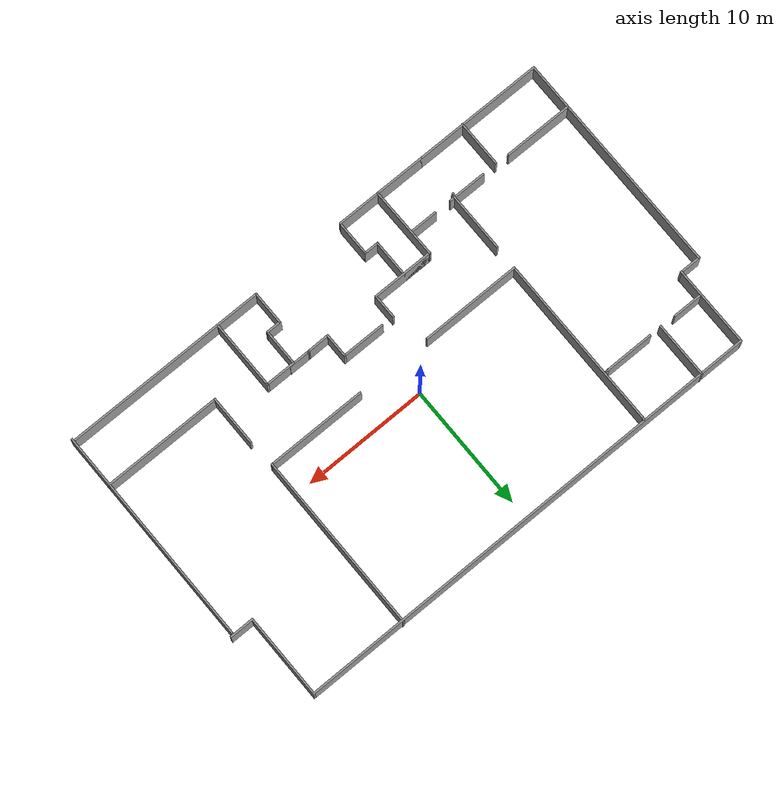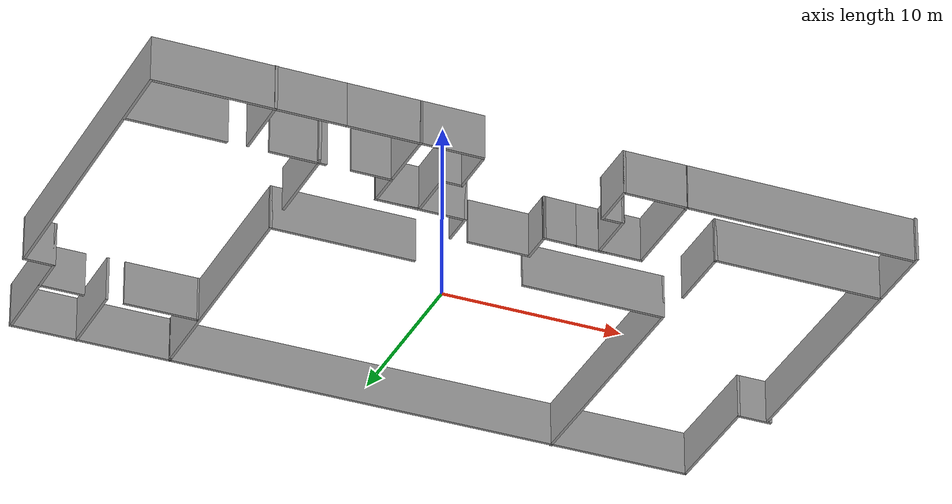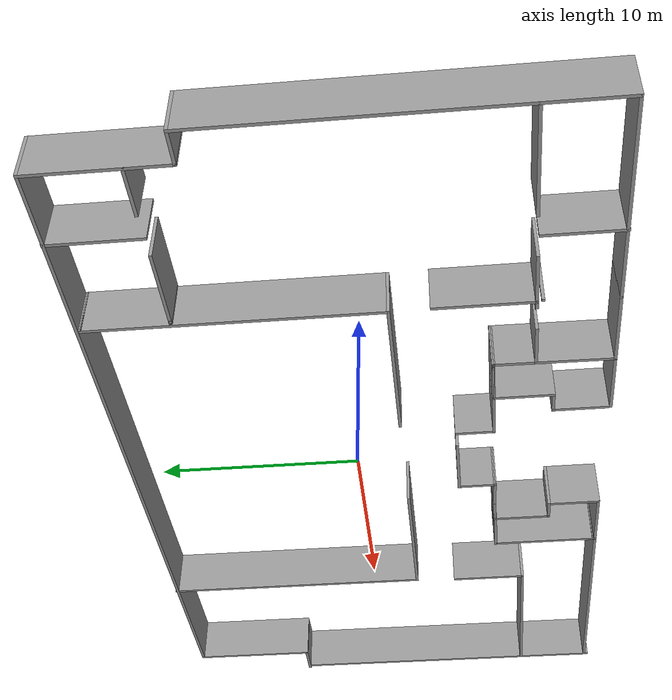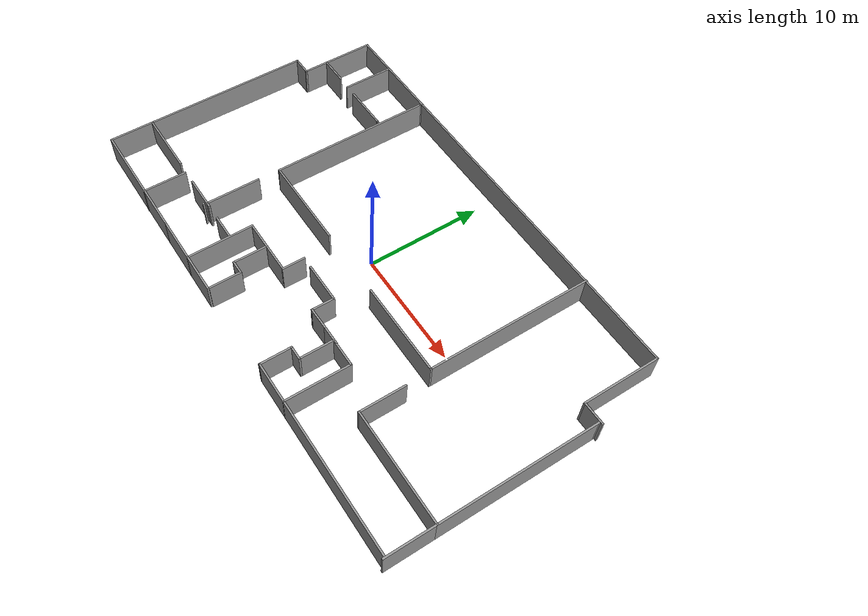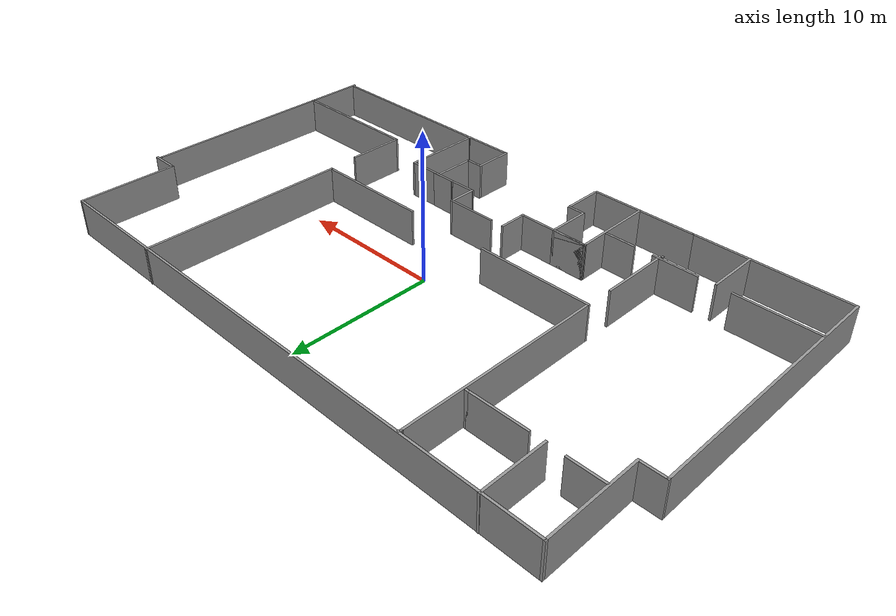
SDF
<?xml version='1.0'?>
<sdf version='1.6'>
  <model name='floor_plan_DTx'>
    <pose frame=''>0.122297 -0.388833 0 0 -0 0</pose>
    <link name='Wall_1'>
      <collision name='Wall_1_Collision'>
        <geometry>
          <box>
            <size>6.5 0.15 2.5</size>
          </box>
        </geometry>
        <pose frame=''>0 0 1.25 0 -0 0</pose>
      </collision>
      <visual name='Wall_1_Visual'>
        <pose frame=''>0 0 1.25 0 -0 0</pose>
        <geometry>
          <box>
            <size>6.5 0.15 2.5</size>
          </box>
        </geometry>
        <material>
          <script>
            <uri>file://media/materials/scripts/gazebo.material</uri>
            <name>Gazebo/Grey</name>
          </script>
          <ambient>1 1 1 1</ambient>
        </material>
        <meta>
          <layer>0</layer>
        </meta>
      </visual>
      <pose frame=''>-19.3 8.91014 0 0 -0 -1.5708</pose>
    </link>
    <link name='Wall_10'>
      <collision name='Wall_10_Collision'>
        <geometry>
          <box>
            <size>1.25 0.15 2.5</size>
          </box>
        </geometry>
        <pose frame=''>0 0 1.25 0 -0 0</pose>
      </collision>
      <visual name='Wall_10_Visual'>
        <pose frame=''>0 0 1.25 0 -0 0</pose>
        <geometry>
          <box>
            <size>1.25 0.15 2.5</size>
          </box>
        </geometry>
        <material>
          <script>
            <uri>file://media/materials/scripts/gazebo.material</uri>
            <name>Gazebo/Grey</name>
          </script>
          <ambient>1 1 1 1</ambient>
        </material>
        <meta>
          <layer>0</layer>
        </meta>
      </visual>
      <pose frame=''>-3.8 -9.36485 0 0 -0 0</pose>
    </link>
    <link name='Wall_11'>
      <collision name='Wall_11_Collision'>
        <geometry>
          <box>
            <size>2.75 0.15 2.5</size>
          </box>
        </geometry>
        <pose frame=''>0 0 1.25 0 -0 0</pose>
      </collision>
      <visual name='Wall_11_Visual'>
        <pose frame=''>0 0 1.25 0 -0 0</pose>
        <geometry>
          <box>
            <size>2.75 0.15 2.5</size>
          </box>
        </geometry>
        <material>
          <script>
            <uri>file://media/materials/scripts/gazebo.material</uri>
            <name>Gazebo/Grey</name>
          </script>
          <ambient>1 1 1 1</ambient>
        </material>
        <meta>
          <layer>0</layer>
        </meta>
      </visual>
      <pose frame=''>-3.25 -10.6649 0 0 -0 -1.5708</pose>
    </link>
    <link name='Wall_15'>
      <collision name='Wall_15_Collision'>
        <geometry>
          <box>
            <size>2.5 0.15 2.5</size>
          </box>
        </geometry>
        <pose frame=''>0 0 1.25 0 -0 0</pose>
      </collision>
      <visual name='Wall_15_Visual'>
        <pose frame=''>0 0 1.25 0 -0 0</pose>
        <geometry>
          <box>
            <size>2.5 0.15 2.5</size>
          </box>
        </geometry>
        <material>
          <script>
            <uri>file://media/materials/scripts/gazebo.material</uri>
            <name>Gazebo/Grey</name>
          </script>
          <ambient>1 1 1 1</ambient>
        </material>
        <meta>
          <layer>0</layer>
        </meta>
      </visual>
      <pose frame=''>6.725 -6.51485 0 0 -0 3.14159</pose>
    </link>
    <link name='Wall_16'>
      <collision name='Wall_16_Collision'>
        <geometry>
          <box>
            <size>3 0.15 2.5</size>
          </box>
        </geometry>
        <pose frame=''>0 0 1.25 0 -0 0</pose>
      </collision>
      <visual name='Wall_16_Visual'>
        <pose frame=''>0 0 1.25 0 -0 0</pose>
        <geometry>
          <box>
            <size>3 0.15 2.5</size>
          </box>
        </geometry>
        <material>
          <script>
            <uri>file://media/materials/scripts/gazebo.material</uri>
            <name>Gazebo/Grey</name>
          </script>
          <ambient>1 1 1 1</ambient>
        </material>
        <meta>
          <layer>0</layer>
        </meta>
      </visual>
      <pose frame=''>5.55 -7.93985 0 0 -0 -1.5708</pose>
    </link>
    <link name='Wall_17'>
      <collision name='Wall_17_Collision'>
        <geometry>
          <box>
            <size>1.25 0.15 2.5</size>
          </box>
        </geometry>
        <pose frame=''>0 0 1.25 0 -0 0</pose>
      </collision>
      <visual name='Wall_17_Visual'>
        <pose frame=''>0 0 1.25 0 -0 0</pose>
        <geometry>
          <box>
            <size>1.25 0.15 2.5</size>
          </box>
        </geometry>
        <material>
          <script>
            <uri>file://media/materials/scripts/gazebo.material</uri>
            <name>Gazebo/Grey</name>
          </script>
          <ambient>1 1 1 1</ambient>
        </material>
        <meta>
          <layer>0</layer>
        </meta>
      </visual>
      <pose frame=''>5 -9.36485 0 0 -0 3.14159</pose>
    </link>
    <link name='Wall_18'>
      <collision name='Wall_18_Collision'>
        <geometry>
          <box>
            <size>2.75 0.15 2.5</size>
          </box>
        </geometry>
        <pose frame=''>0 0 1.25 0 -0 0</pose>
      </collision>
      <visual name='Wall_18_Visual'>
        <pose frame=''>0 0 1.25 0 -0 0</pose>
        <geometry>
          <box>
            <size>2.75 0.15 2.5</size>
          </box>
        </geometry>
        <material>
          <script>
            <uri>file://media/materials/scripts/gazebo.material</uri>
            <name>Gazebo/Grey</name>
          </script>
          <ambient>1 1 1 1</ambient>
        </material>
        <meta>
          <layer>0</layer>
        </meta>
      </visual>
      <pose frame=''>4.45 -10.6649 0 0 -0 -1.5708</pose>
    </link>
    <link name='Wall_19'>
      <collision name='Wall_19_Collision'>
        <geometry>
          <box>
            <size>0.15 0.15 2.5</size>
          </box>
        </geometry>
        <pose frame=''>0 0 1.25 0 -0 0</pose>
      </collision>
      <visual name='Wall_19_Visual'>
        <pose frame=''>0 0 1.25 0 -0 0</pose>
        <geometry>
          <box>
            <size>0.15 0.15 2.5</size>
          </box>
        </geometry>
        <material>
          <script>
            <uri>file://media/materials/scripts/gazebo.material</uri>
            <name>Gazebo/Grey</name>
          </script>
          <ambient>1 1 1 1</ambient>
        </material>
        <meta>
          <layer>0</layer>
        </meta>
      </visual>
      <pose frame=''>4.45 -11.9649 0 0 -0 0</pose>
    </link>
    <link name='Wall_3'>
      <collision name='Wall_3_Collision'>
        <geometry>
          <box>
            <size>1.75 0.15 2.5</size>
          </box>
        </geometry>
        <pose frame=''>0 0 1.25 0 -0 0</pose>
      </collision>
      <visual name='Wall_3_Visual'>
        <pose frame=''>0 0 1.25 0 -0 0</pose>
        <geometry>
          <box>
            <size>1.75 0.15 2.5</size>
          </box>
        </geometry>
        <material>
          <script>
            <uri>file://media/materials/scripts/gazebo.material</uri>
            <name>Gazebo/Grey</name>
          </script>
          <ambient>1 1 1 1</ambient>
        </material>
        <meta>
          <layer>0</layer>
        </meta>
      </visual>
      <pose frame=''>-20.1 5.73515 0 0 -0 3.14159</pose>
    </link>
    <link name='Wall_32'>
      <collision name='Wall_32_Collision'>
        <geometry>
          <box>
            <size>0.15 0.15 2.5</size>
          </box>
        </geometry>
        <pose frame=''>0 0 1.25 0 -0 0</pose>
      </collision>
      <visual name='Wall_32_Visual'>
        <pose frame=''>0 0 1.25 0 -0 0</pose>
        <geometry>
          <box>
            <size>0.15 0.15 2.5</size>
          </box>
        </geometry>
        <material>
          <script>
            <uri>file://media/materials/scripts/gazebo.material</uri>
            <name>Gazebo/Grey</name>
          </script>
          <ambient>1 1 1 1</ambient>
        </material>
        <meta>
          <layer>0</layer>
        </meta>
      </visual>
      <pose frame=''>-10.6734 -8.72827 0 0 -0 0</pose>
    </link>
    <link name='Wall_38'>
      <collision name='Wall_38_Collision'>
        <geometry>
          <box>
            <size>4.25 0.15 2.5</size>
          </box>
        </geometry>
        <pose frame=''>0 0 1.25 0 -0 0</pose>
      </collision>
      <visual name='Wall_38_Visual'>
        <pose frame=''>0 0 1.25 0 -0 0</pose>
        <geometry>
          <box>
            <size>4.25 0.15 2.5</size>
          </box>
        </geometry>
        <material>
          <script>
            <uri>file://media/materials/scripts/gazebo.material</uri>
            <name>Gazebo/Grey</name>
          </script>
          <ambient>1 1 1 1</ambient>
        </material>
        <meta>
          <layer>0</layer>
        </meta>
      </visual>
      <pose frame=''>20.7032 -10.0649 0 0 -0 1.5708</pose>
    </link>
    <link name='Wall_39'>
      <collision name='Wall_39_Collision'>
        <geometry>
          <box>
            <size>9.5 0.15 2.5</size>
          </box>
        </geometry>
        <pose frame=''>0 0 1.25 0 -0 0</pose>
      </collision>
      <visual name='Wall_39_Visual'>
        <pose frame=''>0 0 1.25 0 -0 0</pose>
        <geometry>
          <box>
            <size>9.5 0.15 2.5</size>
          </box>
        </geometry>
        <material>
          <script>
            <uri>file://media/materials/scripts/gazebo.material</uri>
            <name>Gazebo/Grey</name>
          </script>
          <ambient>1 1 1 1</ambient>
        </material>
        <meta>
          <layer>0</layer>
        </meta>
      </visual>
      <pose frame=''>16.0282 -8.01485 0 0 -0 3.14159</pose>
    </link>
    <link name='Wall_4'>
      <collision name='Wall_4_Collision'>
        <geometry>
          <box>
            <size>18 0.15 2.5</size>
          </box>
        </geometry>
        <pose frame=''>0 0 1.25 0 -0 0</pose>
      </collision>
      <visual name='Wall_4_Visual'>
        <pose frame=''>0 0 1.25 0 -0 0</pose>
        <geometry>
          <box>
            <size>18 0.15 2.5</size>
          </box>
        </geometry>
        <material>
          <script>
            <uri>file://media/materials/scripts/gazebo.material</uri>
            <name>Gazebo/Grey</name>
          </script>
          <ambient>1 1 1 1</ambient>
        </material>
        <meta>
          <layer>0</layer>
        </meta>
      </visual>
      <pose frame=''>-20.9 -3.18985 0 0 -0 -1.5708</pose>
    </link>
    <link name='Wall_40'>
      <collision name='Wall_40_Collision'>
        <geometry>
          <box>
            <size>4 0.15 2.5</size>
          </box>
        </geometry>
        <pose frame=''>0 0 1.25 0 -0 0</pose>
      </collision>
      <visual name='Wall_40_Visual'>
        <pose frame=''>0 0 1.25 0 -0 0</pose>
        <geometry>
          <box>
            <size>4 0.15 2.5</size>
          </box>
        </geometry>
        <material>
          <script>
            <uri>file://media/materials/scripts/gazebo.material</uri>
            <name>Gazebo/Grey</name>
          </script>
          <ambient>1 1 1 1</ambient>
        </material>
        <meta>
          <layer>0</layer>
        </meta>
      </visual>
      <pose frame=''>11.3532 -6.08985 0 0 -0 1.5708</pose>
    </link>
    <link name='Wall_42'>
      <collision name='Wall_42_Collision'>
        <geometry>
          <box>
            <size>5.5 0.15 2.5</size>
          </box>
        </geometry>
        <pose frame=''>0 0 1.25 0 -0 0</pose>
      </collision>
      <visual name='Wall_42_Visual'>
        <pose frame=''>0 0 1.25 0 -0 0</pose>
        <geometry>
          <box>
            <size>5.5 0.15 2.5</size>
          </box>
        </geometry>
        <material>
          <script>
            <uri>file://media/materials/scripts/gazebo.material</uri>
            <name>Gazebo/Grey</name>
          </script>
          <ambient>1 1 1 1</ambient>
        </material>
        <meta>
          <layer>0</layer>
        </meta>
      </visual>
      <pose frame=''>7.9 -9.18985 0 0 -0 -1.5708</pose>
    </link>
    <link name='Wall_43'>
      <collision name='Wall_43_Collision'>
        <geometry>
          <box>
            <size>0.25 0.15 2.5</size>
          </box>
        </geometry>
        <pose frame=''>0 0 1.25 0 -0 0</pose>
      </collision>
      <visual name='Wall_43_Visual'>
        <pose frame=''>0 0 1.25 0 -0 0</pose>
        <geometry>
          <box>
            <size>0.25 0.15 2.5</size>
          </box>
        </geometry>
        <material>
          <script>
            <uri>file://media/materials/scripts/gazebo.material</uri>
            <name>Gazebo/Grey</name>
          </script>
          <ambient>1 1 1 1</ambient>
        </material>
        <meta>
          <layer>0</layer>
        </meta>
      </visual>
      <pose frame=''>7.91294 -11.9131 0 0 -0 -1.309</pose>
    </link>
    <link name='Wall_45'>
      <collision name='Wall_45_Collision'>
        <geometry>
          <box>
            <size>4.75 0.15 2.5</size>
          </box>
        </geometry>
        <pose frame=''>0 0 1.25 0 -0 0</pose>
      </collision>
      <visual name='Wall_45_Visual'>
        <pose frame=''>0 0 1.25 0 -0 0</pose>
        <geometry>
          <box>
            <size>4.75 0.15 2.5</size>
          </box>
        </geometry>
        <material>
          <script>
            <uri>file://media/materials/scripts/gazebo.material</uri>
            <name>Gazebo/Grey</name>
          </script>
          <ambient>1 1 1 1</ambient>
        </material>
        <meta>
          <layer>0</layer>
        </meta>
      </visual>
      <pose frame=''>-10.588 -6.15836 0 0 -0 -1.5708</pose>
    </link>
    <link name='Wall_46'>
      <collision name='Wall_46_Collision'>
        <geometry>
          <box>
            <size>0.5 0.15 2.5</size>
          </box>
        </geometry>
        <pose frame=''>0 0 1.25 0 -0 0</pose>
      </collision>
      <visual name='Wall_46_Visual'>
        <pose frame=''>0 0 1.25 0 -0 0</pose>
        <geometry>
          <box>
            <size>0.5 0.15 2.5</size>
          </box>
        </geometry>
        <material>
          <script>
            <uri>file://media/materials/scripts/gazebo.material</uri>
            <name>Gazebo/Grey</name>
          </script>
          <ambient>1 1 1 1</ambient>
        </material>
        <meta>
          <layer>0</layer>
        </meta>
      </visual>
      <pose frame=''>-10.413 -8.45836 0 0 -0 0</pose>
    </link>
    <link name='Wall_48'>
      <collision name='Wall_48_Collision'>
        <geometry>
          <box>
            <size>2.25 0.15 2.5</size>
          </box>
        </geometry>
        <pose frame=''>0 0 1.25 0 -0 0</pose>
      </collision>
      <visual name='Wall_48_Visual'>
        <pose frame=''>0 0 1.25 0 -0 0</pose>
        <geometry>
          <box>
            <size>2.25 0.15 2.5</size>
          </box>
        </geometry>
        <material>
          <script>
            <uri>file://media/materials/scripts/gazebo.material</uri>
            <name>Gazebo/Grey</name>
          </script>
          <ambient>1 1 1 1</ambient>
        </material>
        <meta>
          <layer>0</layer>
        </meta>
      </visual>
      <pose frame=''>-7.781 -8.4868 0 0 -0 3.14159</pose>
    </link>
    <link name='Wall_5'>
      <collision name='Wall_5_Collision'>
        <geometry>
          <box>
            <size>10.5 0.15 2.5</size>
          </box>
        </geometry>
        <pose frame=''>0 0 1.25 0 -0 0</pose>
      </collision>
      <visual name='Wall_5_Visual'>
        <pose frame=''>0 0 1.25 0 -0 0</pose>
        <geometry>
          <box>
            <size>10.5 0.15 2.5</size>
          </box>
        </geometry>
        <material>
          <script>
            <uri>file://media/materials/scripts/gazebo.material</uri>
            <name>Gazebo/Grey</name>
          </script>
          <ambient>1 1 1 1</ambient>
        </material>
        <meta>
          <layer>0</layer>
        </meta>
      </visual>
      <pose frame=''>-15.725 -12.1149 0 0 -0 0</pose>
    </link>
    <link name='Wall_50'>
      <collision name='Wall_50_Collision'>
        <geometry>
          <box>
            <size>2.75 0.15 2.5</size>
          </box>
        </geometry>
        <pose frame=''>0 0 1.25 0 -0 0</pose>
      </collision>
      <visual name='Wall_50_Visual'>
        <pose frame=''>0 0 1.25 0 -0 0</pose>
        <geometry>
          <box>
            <size>2.75 0.15 2.5</size>
          </box>
        </geometry>
        <material>
          <script>
            <uri>file://media/materials/scripts/gazebo.material</uri>
            <name>Gazebo/Grey</name>
          </script>
          <ambient>1 1 1 1</ambient>
        </material>
        <meta>
          <layer>0</layer>
        </meta>
      </visual>
      <pose frame=''>-11.888 -8.45836 0 0 -0 3.14159</pose>
    </link>
    <link name='Wall_52'>
      <collision name='Wall_52_Collision'>
        <geometry>
          <box>
            <size>3.75 0.15 2.5</size>
          </box>
        </geometry>
        <pose frame=''>0 0 1.25 0 -0 0</pose>
      </collision>
      <visual name='Wall_52_Visual'>
        <pose frame=''>0 0 1.25 0 -0 0</pose>
        <geometry>
          <box>
            <size>3.75 0.15 2.5</size>
          </box>
        </geometry>
        <material>
          <script>
            <uri>file://media/materials/scripts/gazebo.material</uri>
            <name>Gazebo/Grey</name>
          </script>
          <ambient>1 1 1 1</ambient>
        </material>
        <meta>
          <layer>0</layer>
        </meta>
      </visual>
      <pose frame=''>-14.3919 -10.34 0 0 -0 -1.5708</pose>
    </link>
    <link name='Wall_54'>
      <collision name='Wall_54_Collision'>
        <geometry>
          <box>
            <size>5.5 0.15 2.5</size>
          </box>
        </geometry>
        <pose frame=''>0 0 1.25 0 -0 0</pose>
      </collision>
      <visual name='Wall_54_Visual'>
        <pose frame=''>0 0 1.25 0 -0 0</pose>
        <geometry>
          <box>
            <size>5.5 0.15 2.5</size>
          </box>
        </geometry>
        <material>
          <script>
            <uri>file://media/materials/scripts/gazebo.material</uri>
            <name>Gazebo/Grey</name>
          </script>
          <ambient>1 1 1 1</ambient>
        </material>
        <meta>
          <layer>0</layer>
        </meta>
      </visual>
      <pose frame=''>-18.1807 -8.407 0 0 -0 0</pose>
    </link>
    <link name='Wall_56'>
      <collision name='Wall_56_Collision'>
        <geometry>
          <box>
            <size>14 0.15 2.5</size>
          </box>
        </geometry>
        <pose frame=''>0 0 1.25 0 -0 0</pose>
      </collision>
      <visual name='Wall_56_Visual'>
        <pose frame=''>0 0 1.25 0 -0 0</pose>
        <geometry>
          <box>
            <size>14 0.15 2.5</size>
          </box>
        </geometry>
        <material>
          <script>
            <uri>file://media/materials/scripts/gazebo.material</uri>
            <name>Gazebo/Grey</name>
          </script>
          <ambient>1 1 1 1</ambient>
        </material>
        <meta>
          <layer>0</layer>
        </meta>
      </visual>
      <pose frame=''>-10.5421 4.99349 0 0 -0 1.5708</pose>
    </link>
    <link name='Wall_57'>
      <collision name='Wall_57_Collision'>
        <geometry>
          <box>
            <size>0.25 0.15 2.5</size>
          </box>
        </geometry>
        <pose frame=''>0 0 1.25 0 -0 0</pose>
      </collision>
      <visual name='Wall_57_Visual'>
        <pose frame=''>0 0 1.25 0 -0 0</pose>
        <geometry>
          <box>
            <size>0.25 0.15 2.5</size>
          </box>
        </geometry>
        <material>
          <script>
            <uri>file://media/materials/scripts/gazebo.material</uri>
            <name>Gazebo/Grey</name>
          </script>
          <ambient>1 1 1 1</ambient>
        </material>
        <meta>
          <layer>0</layer>
        </meta>
      </visual>
      <pose frame=''>-10.5292 11.9668 0 0 -0 1.309</pose>
    </link>
    <link name='Wall_58'>
      <collision name='Wall_58_Collision'>
        <geometry>
          <box>
            <size>0.25 0.15 2.5</size>
          </box>
        </geometry>
        <pose frame=''>0 0 1.25 0 -0 0</pose>
      </collision>
      <visual name='Wall_58_Visual'>
        <pose frame=''>0 0 1.25 0 -0 0</pose>
        <geometry>
          <box>
            <size>0.25 0.15 2.5</size>
          </box>
        </geometry>
        <material>
          <script>
            <uri>file://media/materials/scripts/gazebo.material</uri>
            <name>Gazebo/Grey</name>
          </script>
          <ambient>1 1 1 1</ambient>
        </material>
        <meta>
          <layer>0</layer>
        </meta>
      </visual>
      <pose frame=''>-10.5292 11.9668 0 0 -0 -1.8326</pose>
    </link>
    <link name='Wall_6'>
      <collision name='Wall_6_Collision'>
        <geometry>
          <box>
            <size>4.0532 0.15 2.5</size>
          </box>
        </geometry>
        <pose frame=''>0 0 1.25 0 -0 0</pose>
      </collision>
      <visual name='Wall_6_Visual'>
        <pose frame=''>0 0 1.25 0 -0 0</pose>
        <geometry>
          <box>
            <size>4.0532 0.15 2.5</size>
          </box>
        </geometry>
        <material>
          <script>
            <uri>file://media/materials/scripts/gazebo.material</uri>
            <name>Gazebo/Grey</name>
          </script>
          <ambient>1 1 1 1</ambient>
        </material>
        <meta>
          <layer>0</layer>
        </meta>
      </visual>
      <pose frame=''>-8.5984 -12.1149 0 0 -0 0</pose>
    </link>
    <link name='Wall_60'>
      <collision name='Wall_60_Collision'>
        <geometry>
          <box>
            <size>38.5 0.15 2.5</size>
          </box>
        </geometry>
        <pose frame=''>0 0 1.25 0 -0 0</pose>
      </collision>
      <visual name='Wall_60_Visual'>
        <pose frame=''>0 0 1.25 0 -0 0</pose>
        <geometry>
          <box>
            <size>38.5 0.15 2.5</size>
          </box>
        </geometry>
        <material>
          <script>
            <uri>file://media/materials/scripts/gazebo.material</uri>
            <name>Gazebo/Grey</name>
          </script>
          <ambient>1 1 1 1</ambient>
        </material>
        <meta>
          <layer>0</layer>
        </meta>
      </visual>
      <pose frame=''>-0.124999 12.0851 0 0 -0 0</pose>
    </link>
    <link name='Wall_61'>
      <collision name='Wall_61_Collision'>
        <geometry>
          <box>
            <size>6.75 0.15 2.5</size>
          </box>
        </geometry>
        <pose frame=''>0 0 1.25 0 -0 0</pose>
      </collision>
      <visual name='Wall_61_Visual'>
        <pose frame=''>0 0 1.25 0 -0 0</pose>
        <geometry>
          <box>
            <size>6.75 0.15 2.5</size>
          </box>
        </geometry>
        <material>
          <script>
            <uri>file://media/materials/scripts/gazebo.material</uri>
            <name>Gazebo/Grey</name>
          </script>
          <ambient>1 1 1 1</ambient>
        </material>
        <meta>
          <layer>0</layer>
        </meta>
      </visual>
      <pose frame=''>19.05 8.78514 0 0 -0 -1.5708</pose>
    </link>
    <link name='Wall_62'>
      <collision name='Wall_62_Collision'>
        <geometry>
          <box>
            <size>2 0.15 2.5</size>
          </box>
        </geometry>
        <pose frame=''>0 0 1.25 0 -0 0</pose>
      </collision>
      <visual name='Wall_62_Visual'>
        <pose frame=''>0 0 1.25 0 -0 0</pose>
        <geometry>
          <box>
            <size>2 0.15 2.5</size>
          </box>
        </geometry>
        <material>
          <script>
            <uri>file://media/materials/scripts/gazebo.material</uri>
            <name>Gazebo/Grey</name>
          </script>
          <ambient>1 1 1 1</ambient>
        </material>
        <meta>
          <layer>0</layer>
        </meta>
      </visual>
      <pose frame=''>19.975 5.48515 0 0 -0 0</pose>
    </link>
    <link name='Wall_64'>
      <collision name='Wall_64_Collision'>
        <geometry>
          <box>
            <size>13.5 0.15 2.5</size>
          </box>
        </geometry>
        <pose frame=''>0 0 1.25 0 -0 0</pose>
      </collision>
      <visual name='Wall_64_Visual'>
        <pose frame=''>0 0 1.25 0 -0 0</pose>
        <geometry>
          <box>
            <size>13.5 0.15 2.5</size>
          </box>
        </geometry>
        <material>
          <script>
            <uri>file://media/materials/scripts/gazebo.material</uri>
            <name>Gazebo/Grey</name>
          </script>
          <ambient>1 1 1 1</ambient>
        </material>
        <meta>
          <layer>0</layer>
        </meta>
      </visual>
      <pose frame=''>20.7032 -1.33985 0 0 -0 1.5708</pose>
    </link>
    <link name='Wall_65'>
      <collision name='Wall_65_Collision'>
        <geometry>
          <box>
            <size>0.15 0.15 2.5</size>
          </box>
        </geometry>
        <pose frame=''>0 0 1.25 0 -0 0</pose>
      </collision>
      <visual name='Wall_65_Visual'>
        <pose frame=''>0 0 1.25 0 -0 0</pose>
        <geometry>
          <box>
            <size>0.15 0.15 2.5</size>
          </box>
        </geometry>
        <material>
          <script>
            <uri>file://media/materials/scripts/gazebo.material</uri>
            <name>Gazebo/Grey</name>
          </script>
          <ambient>1 1 1 1</ambient>
        </material>
        <meta>
          <layer>0</layer>
        </meta>
      </visual>
      <pose frame=''>20.7032 5.33514 0 0 -0 0</pose>
    </link>
    <link name='Wall_67'>
      <collision name='Wall_67_Collision'>
        <geometry>
          <box>
            <size>14.25 0.15 2.5</size>
          </box>
        </geometry>
        <pose frame=''>0 0 1.25 0 -0 0</pose>
      </collision>
      <visual name='Wall_67_Visual'>
        <pose frame=''>0 0 1.25 0 -0 0</pose>
        <geometry>
          <box>
            <size>14.25 0.15 2.5</size>
          </box>
        </geometry>
        <material>
          <script>
            <uri>file://media/materials/scripts/gazebo.material</uri>
            <name>Gazebo/Grey</name>
          </script>
          <ambient>1 1 1 1</ambient>
        </material>
        <meta>
          <layer>0</layer>
        </meta>
      </visual>
      <pose frame=''>11.2075 5.09 0 0 -0 -1.5708</pose>
    </link>
    <link name='Wall_68'>
      <collision name='Wall_68_Collision'>
        <geometry>
          <box>
            <size>8 0.15 2.5</size>
          </box>
        </geometry>
        <pose frame=''>0 0 1.25 0 -0 0</pose>
      </collision>
      <visual name='Wall_68_Visual'>
        <pose frame=''>0 0 1.25 0 -0 0</pose>
        <geometry>
          <box>
            <size>8 0.15 2.5</size>
          </box>
        </geometry>
        <material>
          <script>
            <uri>file://media/materials/scripts/gazebo.material</uri>
            <name>Gazebo/Grey</name>
          </script>
          <ambient>1 1 1 1</ambient>
        </material>
        <meta>
          <layer>0</layer>
        </meta>
      </visual>
      <pose frame=''>7.28254 -1.96 0 0 -0 3.14159</pose>
    </link>
    <link name='Wall_7'>
      <collision name='Wall_7_Collision'>
        <geometry>
          <box>
            <size>5.75 0.15 2.5</size>
          </box>
        </geometry>
        <pose frame=''>0 0 1.25 0 -0 0</pose>
      </collision>
      <visual name='Wall_7_Visual'>
        <pose frame=''>0 0 1.25 0 -0 0</pose>
        <geometry>
          <box>
            <size>5.75 0.15 2.5</size>
          </box>
        </geometry>
        <material>
          <script>
            <uri>file://media/materials/scripts/gazebo.material</uri>
            <name>Gazebo/Grey</name>
          </script>
          <ambient>1 1 1 1</ambient>
        </material>
        <meta>
          <layer>0</layer>
        </meta>
      </visual>
      <pose frame=''>-6.6734 -9.31485 0 0 -0 1.5803</pose>
    </link>
    <link name='Wall_70'>
      <collision name='Wall_70_Collision'>
        <geometry>
          <box>
            <size>8 0.15 2.5</size>
          </box>
        </geometry>
        <pose frame=''>0 0 1.25 0 -0 0</pose>
      </collision>
      <visual name='Wall_70_Visual'>
        <pose frame=''>0 0 1.25 0 -0 0</pose>
        <geometry>
          <box>
            <size>8 0.15 2.5</size>
          </box>
        </geometry>
        <material>
          <script>
            <uri>file://media/materials/scripts/gazebo.material</uri>
            <name>Gazebo/Grey</name>
          </script>
          <ambient>1 1 1 1</ambient>
        </material>
        <meta>
          <layer>0</layer>
        </meta>
      </visual>
      <pose frame=''>-6.61712 -1.93151 0 0 -0 0</pose>
    </link>
    <link name='Wall_72'>
      <collision name='Wall_72_Collision'>
        <geometry>
          <box>
            <size>5 0.15 2.5</size>
          </box>
        </geometry>
        <pose frame=''>0 0 1.25 0 -0 0</pose>
      </collision>
      <visual name='Wall_72_Visual'>
        <pose frame=''>0 0 1.25 0 -0 0</pose>
        <geometry>
          <box>
            <size>5 0.15 2.5</size>
          </box>
        </geometry>
        <material>
          <script>
            <uri>file://media/materials/scripts/gazebo.material</uri>
            <name>Gazebo/Grey</name>
          </script>
          <ambient>1 1 1 1</ambient>
        </material>
        <meta>
          <layer>0</layer>
        </meta>
      </visual>
      <pose frame=''>-4.275 -6.51485 0 0 -0 0</pose>
    </link>
    <link name='Wall_74'>
      <collision name='Wall_74_Collision'>
        <geometry>
          <box>
            <size>1.75 0.15 2.5</size>
          </box>
        </geometry>
        <pose frame=''>0 0 1.25 0 -0 0</pose>
      </collision>
      <visual name='Wall_74_Visual'>
        <pose frame=''>0 0 1.25 0 -0 0</pose>
        <geometry>
          <box>
            <size>1.75 0.15 2.5</size>
          </box>
        </geometry>
        <material>
          <script>
            <uri>file://media/materials/scripts/gazebo.material</uri>
            <name>Gazebo/Grey</name>
          </script>
          <ambient>1 1 1 1</ambient>
        </material>
        <meta>
          <layer>0</layer>
        </meta>
      </visual>
      <pose frame=''>5.05425 -6.48945 0 0 -0 3.14159</pose>
    </link>
    <link name='Wall_76'>
      <collision name='Wall_76_Collision'>
        <geometry>
          <box>
            <size>2 0.15 2.5</size>
          </box>
        </geometry>
        <pose frame=''>0 0 1.25 0 -0 0</pose>
      </collision>
      <visual name='Wall_76_Visual'>
        <pose frame=''>0 0 1.25 0 -0 0</pose>
        <geometry>
          <box>
            <size>2 0.15 2.5</size>
          </box>
        </geometry>
        <material>
          <script>
            <uri>file://media/materials/scripts/gazebo.material</uri>
            <name>Gazebo/Grey</name>
          </script>
          <ambient>1 1 1 1</ambient>
        </material>
        <meta>
          <layer>0</layer>
        </meta>
      </visual>
      <pose frame=''>-1.85 -5.58985 0 0 -0 1.5708</pose>
    </link>
    <link name='Wall_78'>
      <collision name='Wall_78_Collision'>
        <geometry>
          <box>
            <size>2 0.15 2.5</size>
          </box>
        </geometry>
        <pose frame=''>0 0 1.25 0 -0 0</pose>
      </collision>
      <visual name='Wall_78_Visual'>
        <pose frame=''>0 0 1.25 0 -0 0</pose>
        <geometry>
          <box>
            <size>2 0.15 2.5</size>
          </box>
        </geometry>
        <material>
          <script>
            <uri>file://media/materials/scripts/gazebo.material</uri>
            <name>Gazebo/Grey</name>
          </script>
          <ambient>1 1 1 1</ambient>
        </material>
        <meta>
          <layer>0</layer>
        </meta>
      </visual>
      <pose frame=''>2.5 -5.58985 0 0 -0 -1.5708</pose>
    </link>
    <link name='Wall_79'>
      <collision name='Wall_79_Collision'>
        <geometry>
          <box>
            <size>1.90443 0.15 2.5</size>
          </box>
        </geometry>
        <pose frame=''>0 0 1.25 0 -0 0</pose>
      </collision>
      <visual name='Wall_79_Visual'>
        <pose frame=''>0 0 1.25 0 -0 0</pose>
        <geometry>
          <box>
            <size>1.90443 0.15 2.5</size>
          </box>
        </geometry>
        <material>
          <script>
            <uri>file://media/materials/scripts/gazebo.material</uri>
            <name>Gazebo/Grey</name>
          </script>
          <ambient>1 1 1 1</ambient>
        </material>
        <meta>
          <layer>0</layer>
        </meta>
      </visual>
      <pose frame=''>3.37712 -6.50215 0 0 -0 0.014479</pose>
    </link>
    <link name='Wall_8'>
      <collision name='Wall_8_Collision'>
        <geometry>
          <box>
            <size>2.5 0.15 2.5</size>
          </box>
        </geometry>
        <pose frame=''>0 0 1.25 0 -0 0</pose>
      </collision>
      <visual name='Wall_8_Visual'>
        <pose frame=''>0 0 1.25 0 -0 0</pose>
        <geometry>
          <box>
            <size>2.5 0.15 2.5</size>
          </box>
        </geometry>
        <material>
          <script>
            <uri>file://media/materials/scripts/gazebo.material</uri>
            <name>Gazebo/Grey</name>
          </script>
          <ambient>1 1 1 1</ambient>
        </material>
        <meta>
          <layer>0</layer>
        </meta>
      </visual>
      <pose frame=''>-5.525 -6.51485 0 0 -0 0</pose>
    </link>
    <link name='Wall_81'>
      <collision name='Wall_81_Collision'>
        <geometry>
          <box>
            <size>3.5 0.15 2.5</size>
          </box>
        </geometry>
        <pose frame=''>0 0 1.25 0 -0 0</pose>
      </collision>
      <visual name='Wall_81_Visual'>
        <pose frame=''>0 0 1.25 0 -0 0</pose>
        <geometry>
          <box>
            <size>3.5 0.15 2.5</size>
          </box>
        </geometry>
        <material>
          <script>
            <uri>file://media/materials/scripts/gazebo.material</uri>
            <name>Gazebo/Grey</name>
          </script>
          <ambient>1 1 1 1</ambient>
        </material>
        <meta>
          <layer>0</layer>
        </meta>
      </visual>
      <pose frame=''>0.825001 -4.66486 0 0 -0 3.14159</pose>
    </link>
    <link name='Wall_83'>
      <collision name='Wall_83_Collision'>
        <geometry>
          <box>
            <size>4.5 0.15 2.5</size>
          </box>
        </geometry>
        <pose frame=''>0 0 1.25 0 -0 0</pose>
      </collision>
      <visual name='Wall_83_Visual'>
        <pose frame=''>0 0 1.25 0 -0 0</pose>
        <geometry>
          <box>
            <size>4.5 0.15 2.5</size>
          </box>
        </geometry>
        <material>
          <script>
            <uri>file://media/materials/scripts/gazebo.material</uri>
            <name>Gazebo/Grey</name>
          </script>
          <ambient>1 1 1 1</ambient>
        </material>
        <meta>
          <layer>0</layer>
        </meta>
      </visual>
      <pose frame=''>-15.6813 9.93441 0 0 -0 -1.5708</pose>
    </link>
    <link name='Wall_85'>
      <collision name='Wall_85_Collision'>
        <geometry>
          <box>
            <size>2.5 0.15 2.5</size>
          </box>
        </geometry>
        <pose frame=''>0 0 1.25 0 -0 0</pose>
      </collision>
      <visual name='Wall_85_Visual'>
        <pose frame=''>0 0 1.25 0 -0 0</pose>
        <geometry>
          <box>
            <size>2.5 0.15 2.5</size>
          </box>
        </geometry>
        <material>
          <script>
            <uri>file://media/materials/scripts/gazebo.material</uri>
            <name>Gazebo/Grey</name>
          </script>
          <ambient>1 1 1 1</ambient>
        </material>
        <meta>
          <layer>0</layer>
        </meta>
      </visual>
      <pose frame=''>-18.1159 7.82677 0 0 -0 0</pose>
    </link>
    <link name='Wall_87'>
      <collision name='Wall_87_Collision'>
        <geometry>
          <box>
            <size>4 0.15 2.5</size>
          </box>
        </geometry>
        <pose frame=''>0 0 1.25 0 -0 0</pose>
      </collision>
      <visual name='Wall_87_Visual'>
        <pose frame=''>0 0 1.25 0 -0 0</pose>
        <geometry>
          <box>
            <size>4 0.15 2.5</size>
          </box>
        </geometry>
        <material>
          <script>
            <uri>file://media/materials/scripts/gazebo.material</uri>
            <name>Gazebo/Grey</name>
          </script>
          <ambient>1 1 1 1</ambient>
        </material>
        <meta>
          <layer>0</layer>
        </meta>
      </visual>
      <pose frame=''>-12.7468 7.76559 0 0 -0 0</pose>
    </link>
    <link name='Wall_88'>
      <collision name='Wall_88_Collision'>
        <geometry>
          <box>
            <size>0.25 0.15 2.5</size>
          </box>
        </geometry>
        <pose frame=''>0 0 1.25 0 -0 0</pose>
      </collision>
      <visual name='Wall_88_Visual'>
        <pose frame=''>0 0 1.25 0 -0 0</pose>
        <geometry>
          <box>
            <size>0.25 0.15 2.5</size>
          </box>
        </geometry>
        <material>
          <script>
            <uri>file://media/materials/scripts/gazebo.material</uri>
            <name>Gazebo/Grey</name>
          </script>
          <ambient>1 1 1 1</ambient>
        </material>
        <meta>
          <layer>0</layer>
        </meta>
      </visual>
      <pose frame=''>-10.7718 7.76559 0 0 -0 0</pose>
    </link>
    <link name='Wall_89'>
      <collision name='Wall_89_Collision'>
        <geometry>
          <box>
            <size>0.25 0.15 2.5</size>
          </box>
        </geometry>
        <pose frame=''>0 0 1.25 0 -0 0</pose>
      </collision>
      <visual name='Wall_89_Visual'>
        <pose frame=''>0 0 1.25 0 -0 0</pose>
        <geometry>
          <box>
            <size>0.25 0.15 2.5</size>
          </box>
        </geometry>
        <material>
          <script>
            <uri>file://media/materials/scripts/gazebo.material</uri>
            <name>Gazebo/Grey</name>
          </script>
          <ambient>1 1 1 1</ambient>
        </material>
        <meta>
          <layer>0</layer>
        </meta>
      </visual>
      <pose frame=''>-10.7718 7.76559 0 0 -0 3.14159</pose>
    </link>
    <link name='Wall_9'>
      <collision name='Wall_9_Collision'>
        <geometry>
          <box>
            <size>3 0.15 2.5</size>
          </box>
        </geometry>
        <pose frame=''>0 0 1.25 0 -0 0</pose>
      </collision>
      <visual name='Wall_9_Visual'>
        <pose frame=''>0 0 1.25 0 -0 0</pose>
        <geometry>
          <box>
            <size>3 0.15 2.5</size>
          </box>
        </geometry>
        <material>
          <script>
            <uri>file://media/materials/scripts/gazebo.material</uri>
            <name>Gazebo/Grey</name>
          </script>
          <ambient>1 1 1 1</ambient>
        </material>
        <meta>
          <layer>0</layer>
        </meta>
      </visual>
      <pose frame=''>-4.35 -7.93985 0 0 -0 -1.5708</pose>
    </link>
    <link name='Wall_92'>
      <collision name='Wall_92_Collision'>
        <geometry>
          <box>
            <size>3.5 0.15 2.5</size>
          </box>
        </geometry>
        <pose frame=''>0 0 1.25 0 -0 0</pose>
      </collision>
      <visual name='Wall_92_Visual'>
        <pose frame=''>0 0 1.25 0 -0 0</pose>
        <geometry>
          <box>
            <size>3.5 0.15 2.5</size>
          </box>
        </geometry>
        <material>
          <script>
            <uri>file://media/materials/scripts/gazebo.material</uri>
            <name>Gazebo/Grey</name>
          </script>
          <ambient>1 1 1 1</ambient>
        </material>
        <meta>
          <layer>0</layer>
        </meta>
      </visual>
      <pose frame=''>-4.9718 -12.1149 0 0 -0 0</pose>
    </link>
    <link name='Wall_94'>
      <collision name='Wall_94_Collision'>
        <geometry>
          <box>
            <size>16.25 0.15 2.5</size>
          </box>
        </geometry>
        <pose frame=''>0 0 1.25 0 -0 0</pose>
      </collision>
      <visual name='Wall_94_Visual'>
        <pose frame=''>0 0 1.25 0 -0 0</pose>
        <geometry>
          <box>
            <size>16.25 0.15 2.5</size>
          </box>
        </geometry>
        <material>
          <script>
            <uri>file://media/materials/scripts/gazebo.material</uri>
            <name>Gazebo/Grey</name>
          </script>
          <ambient>1 1 1 1</ambient>
        </material>
        <meta>
          <layer>0</layer>
        </meta>
      </visual>
      <pose frame=''>12.5 -11.9649 0 0 -0 0</pose>
    </link>
    <static>1</static>
  </model>
</sdf>
